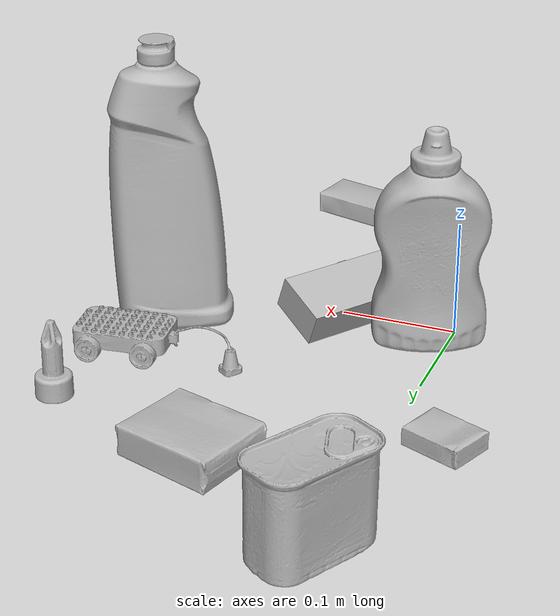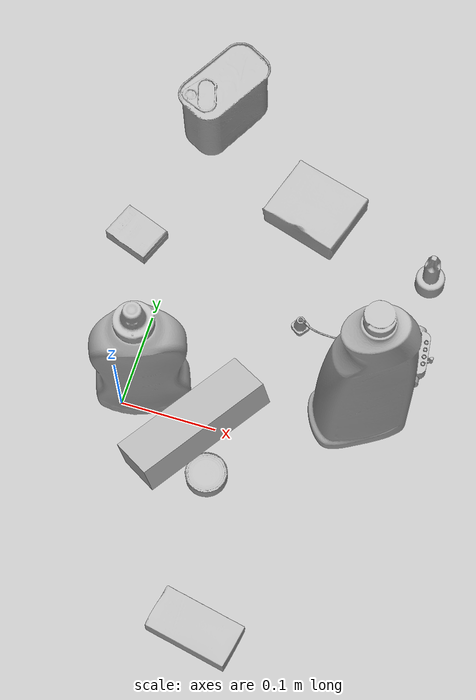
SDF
<sdf version="1.4">
  <world name="default">
    <light name="light1" type="point">
      <pose>0 0 1 0 0 0</pose>
      <diffuse>3 3 3 1</diffuse>
      <specular>3 3 3 1</specular>
    </light>
    <light name="light2" type="point">
      <pose>0 0.5 2 0 0 0</pose>
      <diffuse>1 1 1 1</diffuse>
      <specular>1 1 1 1</specular>
    </light>
    <light name="light3" type="point">
      <pose>0 0.5 2 0 0 0</pose>
      <diffuse>3 3 3 1</diffuse>
      <specular>3 3 3 1</specular>
    </light>
    <scene>
      <ambient>0.7 0.7 0.7</ambient>
    </scene>
    <model name="bottle1">
      <link name="link_bottle1">
        <collision name="default">
          <geometry>
            <mesh>
              <uri>model://bleach_cleanser/collision_meshes/collision.obj</uri>
              <scale>1.0 1.0 1.0</scale>
            </mesh>
          </geometry>
          <surface>
            <friction>
              <ode>
                <mu>0.5</mu>
                <mu2>0.5</mu2>
              </ode>
            </friction>
          <contact>
        <ode>
            <max_vel>0</max_vel>
            <min_depth>0.0001</min_depth>
            <kp>1e8</kp>
        </ode>
    </contact></surface>
        </collision>
        <visual name="default">
          <geometry>
            <mesh>
              <uri>model://bleach_cleanser/visual_meshes/visual.dae</uri>
              <scale>1.0 1.0 1.0</scale>
            </mesh>
          </geometry>
        </visual>
        <inertial>
          <mass>0.8435376882553101</mass>
          <pose>0.00012193185102660209 0.0037838835269212723 -0.02442161925137043 -0.0738167136291003 0.00042011570398771517 -0.0068750683244174</pose>
          <inertia>
            <ixx>0.0041056215</ixx>
            <iyy>0.0038258375</iyy>
            <izz>0.0007019545</izz>
            <ixy>0</ixy>
            <ixz>0</ixz>
            <iyz>0</iyz>
          </inertia>
        </inertial>
      </link>
      <pose>0.23590975999832153 0.057635724544525146 0.12577036023139954 -0.0023576045276526504 0.0030667564400523274 -1.0615697545278078</pose>
    </model>
    <model name="bottle2">
      <link name="link_bottle2">
        <collision name="default">
          <geometry>
            <mesh>
              <uri>model://mustard_bottle/collision_meshes/collision.obj</uri>
              <scale>1.0 1.0 1.0</scale>
            </mesh>
          </geometry>
          <surface>
            <friction>
              <ode>
                <mu>0.5</mu>
                <mu2>0.5</mu2>
              </ode>
            </friction>
          <contact>
        <ode>
            <max_vel>0</max_vel>
            <min_depth>0.0001</min_depth>
            <kp>1e8</kp>
        </ode>
    </contact></surface>
        </collision>
        <visual name="default">
          <geometry>
            <mesh>
              <uri>model://mustard_bottle/visual_meshes/visual.dae</uri>
              <scale>1.0 1.0 1.0</scale>
            </mesh>
          </geometry>
        </visual>
        <inertial>
          <mass>0.5862947106361389</mass>
          <pose>0.0005032453336752951 -0.00015647400869056582 -0.01747579500079155 0.0004182326333961274 0.0009465780125852031 0.02485369627950655</pose>
          <inertia>
            <ixx>0.0016280604</ixx>
            <iyy>0.001428485</iyy>
            <izz>0.00042907606</izz>
            <ixy>0</ixy>
            <ixz>0</ixz>
            <iyz>0</iyz>
          </inertia>
        </inertial>
      </link>
      <pose>0.01745043694972992 0.02167385444045067 0.09568722546100616 -0.001497513038697514 0.025963818943889414 1.925350588658428</pose>
    </model>
    <model name="toy1">
      <link name="link_toy1">
        <collision name="default">
          <geometry>
            <mesh>
              <uri>model://d_toy_airplane/collision_meshes/collision.obj</uri>
              <scale>1.0 1.0 1.0</scale>
            </mesh>
          </geometry>
          <surface>
            <friction>
              <ode>
                <mu>0.5</mu>
                <mu2>0.5</mu2>
              </ode>
            </friction>
          <contact>
        <ode>
            <max_vel>0</max_vel>
            <min_depth>0.0001</min_depth>
            <kp>1e8</kp>
        </ode>
    </contact></surface>
        </collision>
        <visual name="default">
          <geometry>
            <mesh>
              <uri>model://d_toy_airplane/visual_meshes/visual.dae</uri>
              <scale>1.0 1.0 1.0</scale>
            </mesh>
          </geometry>
        </visual>
        <inertial>
          <mass>0.016342557966709137</mass>
          <pose>9.410292841494083e-05 -5.809347931062803e-05 -0.011728093959391117 0.0002665850352305412 0.004678995185611379 0.5193821656772198</pose>
          <inertia>
            <ixx>4.8991824e-06</ixx>
            <iyy>4.9028777e-06</iyy>
            <izz>1.4790946e-06</izz>
            <ixy>0</ixy>
            <ixz>0</ixz>
            <iyz>0</iyz>
          </inertia>
        </inertial>
      </link>
      <pose>0.2668114900588989 0.2205934375524521 0.0333387590944767 -4.2190633915112386e-05 -0.0001826428896533183 0.0227368152761729</pose>
    </model>
    <model name="toy2">
      <link name="link_toy2">
        <collision name="default">
          <geometry>
            <mesh>
              <uri>model://g_lego_duplo/collision_meshes/collision.obj</uri>
              <scale>0.5 0.5 0.5</scale>
            </mesh>
          </geometry>
          <surface>
            <friction>
              <ode>
                <mu>0.5</mu>
                <mu2>0.5</mu2>
              </ode>
            </friction>
          <contact>
        <ode>
            <max_vel>0</max_vel>
            <min_depth>0.0001</min_depth>
            <kp>1e8</kp>
        </ode>
    </contact></surface>
        </collision>
        <visual name="default">
          <geometry>
            <mesh>
              <uri>model://g_lego_duplo/visual_meshes/visual.dae</uri>
              <scale>0.5 0.5 0.5</scale>
            </mesh>
          </geometry>
        </visual>
        <inertial>
          <mass>0.06075087562203407</mass>
          <pose>-0.02502383105456829 0.0008777320035733283 0.0019403373589739203 0.010962969944672394 0.038108282316868566 -0.09653022106038826</pose>
          <inertia>
            <ixx>2.2007183e-05</ixx>
            <iyy>6.65348e-05</iyy>
            <izz>8.323752e-05</izz>
            <ixy>0</ixy>
            <ixz>0</ixz>
            <iyz>0</iyz>
          </inertia>
        </inertial>
      </link>
      <pose>0.2177410125732422 0.12819021940231323 0.014918780885636806 -0.0003579373947785158 -0.0048879778708477975 -3.028725697107649</pose>
    </model>
    <model name="can1">
      <link name="link_can1">
        <collision name="default">
          <geometry>
            <mesh>
              <uri>model://potted_meat_can/collision_meshes/collision.obj</uri>
              <scale>1.0 1.0 1.0</scale>
            </mesh>
          </geometry>
          <surface>
            <friction>
              <ode>
                <mu>0.5</mu>
                <mu2>0.5</mu2>
              </ode>
            </friction>
          <contact>
        <ode>
            <max_vel>0</max_vel>
            <min_depth>0.0001</min_depth>
            <kp>1e8</kp>
        </ode>
    </contact></surface>
        </collision>
        <visual name="default">
          <geometry>
            <mesh>
              <uri>model://potted_meat_can/visual_meshes/visual.dae</uri>
              <scale>1.0 1.0 1.0</scale>
            </mesh>
          </geometry>
        </visual>
        <inertial>
          <mass>0.20078136026859283</mass>
          <pose>0.00022888144303578883 -5.9891190176131204e-05 -0.0006367445457726717 -0.02809335636395505 -0.007232596981483405 0.015406261474000347</pose>
          <inertia>
            <ixx>0.0002582842</ixx>
            <iyy>0.00015692727</iyy>
            <izz>0.0001878526</izz>
            <ixy>0</ixy>
            <ixz>0</ixz>
            <iyz>0</iyz>
          </inertia>
        </inertial>
      </link>
      <pose>0.002406721469014883 0.3478878140449524 0.04212801158428192 -3.7634247609491346e-08 -4.603470241580375e-07 -0.5210715401381031</pose>
    </model>
    <model name="can2">
      <link name="link_can2">
        <collision name="default">
          <geometry>
            <mesh>
              <uri>model://tuna_fish_can/collision_meshes/collision.obj</uri>
              <scale>0.5 0.5 0.5</scale>
            </mesh>
          </geometry>
          <surface>
            <friction>
              <ode>
                <mu>0.5</mu>
                <mu2>0.5</mu2>
              </ode>
            </friction>
          <contact>
        <ode>
            <max_vel>0</max_vel>
            <min_depth>0.0001</min_depth>
            <kp>1e8</kp>
        </ode>
    </contact></surface>
        </collision>
        <visual name="default">
          <geometry>
            <mesh>
              <uri>model://tuna_fish_can/visual_meshes/visual.dae</uri>
              <scale>0.5 0.5 0.5</scale>
            </mesh>
          </geometry>
        </visual>
        <inertial>
          <mass>0.014736190438270569</mass>
          <pose>-2.036184559983667e-05 -7.256420758494642e-06 -0.0005269023822620511 -0.0017944748482382063 0.00017166274907885265 0.24056368509195397</pose>
          <inertia>
            <ixx>1.992355e-06</ixx>
            <iyy>1.9840513e-06</iyy>
            <izz>3.409204e-06</izz>
            <ixy>0</ixy>
            <ixz>0</ixz>
            <iyz>0</iyz>
          </inertia>
        </inertial>
      </link>
      <pose>0.10802321881055832 -0.05168650299310684 0.008568103425204754 -0.0013147470521777695 0.0015592865379024888 2.0117795865002805</pose>
    </model>
    <model name="box1">
      <link name="link_box1">
        <collision name="default">
          <geometry>
            <mesh>
              <uri>model://sugar_box/collision_meshes/collision.obj</uri>
              <scale>0.5 0.5 0.5</scale>
            </mesh>
          </geometry>
          <surface>
            <friction>
              <ode>
                <mu>0.5</mu>
                <mu2>0.5</mu2>
              </ode>
            </friction>
          <contact>
        <ode>
            <max_vel>0</max_vel>
            <min_depth>0.0001</min_depth>
            <kp>1e8</kp>
        </ode>
    </contact></surface>
        </collision>
        <visual name="default">
          <geometry>
            <mesh>
              <uri>model://sugar_box/visual_meshes/visual.dae</uri>
              <scale>0.5 0.5 0.5</scale>
            </mesh>
          </geometry>
        </visual>
        <inertial>
          <mass>0.12222740799188614</mass>
          <pose>0.0005171863595023751 1.9245549992774613e-05 -0.00018182404164690524 -0.000404625834306888 0.0010506637544316808 0.0026153790219515644</pose>
          <inertia>
            <ixx>2.5459884e-05</ixx>
            <iyy>8.229157e-05</iyy>
            <izz>9.851283e-05</izz>
            <ixy>0</ixy>
            <ixz>0</ixz>
            <iyz>0</iyz>
          </inertia>
        </inertial>
      </link>
      <pose>0.14552786946296692 -0.20479455590248108 0.011399302631616592 0.000775011874475405 -0.023433151826670624 -0.21438539710285057</pose>
    </model>
    <model name="box2">
      <link name="link_box2">
        <collision name="default">
          <geometry>
            <mesh>
              <uri>model://jenga/collision_meshes/collision.obj</uri>
              <scale>1.0 1.0 1.0</scale>
            </mesh>
          </geometry>
          <surface>
            <friction>
              <ode>
                <mu>0.5</mu>
                <mu2>0.5</mu2>
              </ode>
            </friction>
          <contact>
        <ode>
            <max_vel>0</max_vel>
            <min_depth>0.0001</min_depth>
            <kp>1e8</kp>
        </ode>
    </contact></surface>
        </collision>
        <visual name="default">
          <geometry>
            <mesh>
              <uri>model://jenga/visual_meshes/visual.dae</uri>
              <scale>1.0 1.0 1.0</scale>
            </mesh>
          </geometry>
        </visual>
        <inertial>
          <mass>0.17645145952701569</mass>
          <pose>-2.502855807051674e-07 -0.00010250011109746993 -4.0923405322246253e-05 0.0 -7.342155186052628e-07 0.0</pose>
          <inertia>
            <ixx>4.8828406e-05</ixx>
            <iyy>0.00033085994</iyy>
            <izz>0.00035322108</izz>
            <ixy>0</ixy>
            <ixz>0</ixz>
            <iyz>0</iyz>
          </inertia>
        </inertial>
      </link>
      <pose>0.08122189342975616 -0.007454814855009317 0.02305731549859047 0.37576052676147165 -1.2388024556066361e-06 -2.168179491228978</pose>
    </model>
    <model name="box3">
      <link name="link_box3">
        <collision name="default">
          <geometry>
            <mesh>
              <uri>model://gelatin_box/collision_meshes/collision.obj</uri>
              <scale>1.0 1.0 1.0</scale>
            </mesh>
          </geometry>
          <surface>
            <friction>
              <ode>
                <mu>0.5</mu>
                <mu2>0.5</mu2>
              </ode>
            </friction>
          <contact>
        <ode>
            <max_vel>0</max_vel>
            <min_depth>0.0001</min_depth>
            <kp>1e8</kp>
        </ode>
    </contact></surface>
        </collision>
        <visual name="default">
          <geometry>
            <mesh>
              <uri>model://gelatin_box/visual_meshes/visual.dae</uri>
              <scale>1.0 1.0 1.0</scale>
            </mesh>
          </geometry>
        </visual>
        <inertial>
          <mass>0.13059620559215546</mass>
          <pose>0.0004319618456065655 0.00011156871914863586 -0.0003640321083366871 -0.0010503721928909568 -0.00475581775899517 0.01644055574591333</pose>
          <inertia>
            <ixx>9.219027e-05</ixx>
            <iyy>6.585102e-05</iyy>
            <izz>0.00014033413</izz>
            <ixy>0</ixy>
            <ixz>0</ixz>
            <iyz>0</iyz>
          </inertia>
        </inertial>
      </link>
      <pose>0.12837283313274384 0.2643625736236572 0.015168312005698681 0.005597501545913355 -0.007304575353337477 -1.8804091806558751</pose>
    </model>
    <model name="box4">
      <link name="link_box4">
        <collision name="default">
          <geometry>
            <mesh>
              <uri>model://cracker_box/collision_meshes/collision.obj</uri>
              <scale>0.25 0.25 0.25</scale>
            </mesh>
          </geometry>
          <surface>
            <friction>
              <ode>
                <mu>0.5</mu>
                <mu2>0.5</mu2>
              </ode>
            </friction>
          <contact>
        <ode>
            <max_vel>0</max_vel>
            <min_depth>0.0001</min_depth>
            <kp>1e8</kp>
        </ode>
    </contact></surface>
        </collision>
        <visual name="default">
          <geometry>
            <mesh>
              <uri>model://cracker_box/visual_meshes/visual.dae</uri>
              <scale>0.25 0.25 0.25</scale>
            </mesh>
          </geometry>
        </visual>
        <inertial>
          <mass>0.04771818593144417</mass>
          <pose>0.0002366032567806542 6.358561950037256e-05 -0.00042573839891701937 -0.00031620769108308636 -0.011106489600173282 0.0025467959336867136</pose>
          <inertia>
            <ixx>7.5858593e-06</ixx>
            <iyy>1.2525745e-05</iyy>
            <izz>1.7875387e-05</izz>
            <ixy>0</ixy>
            <ixz>0</ixz>
            <iyz>0</iyz>
          </inertia>
        </inertial>
      </link>
      <pose>-0.044741783291101456 0.18359780311584473 0.009096029214560986 -0.014050325427951461 -0.005016812822666768 -0.3732855911846642</pose>
    </model>
  <physics type="ode">
      <max_contacts>50</max_contacts>
      <ode>
        <solver>
          <type>quick</type>
          <iters>75</iters>
        </solver>
        <constraints>
          <contact_max_correcting_vel>0</contact_max_correcting_vel>
          <contact_surface_layer>0</contact_surface_layer>
        </constraints>
      </ode>
    </physics></world>
</sdf>
